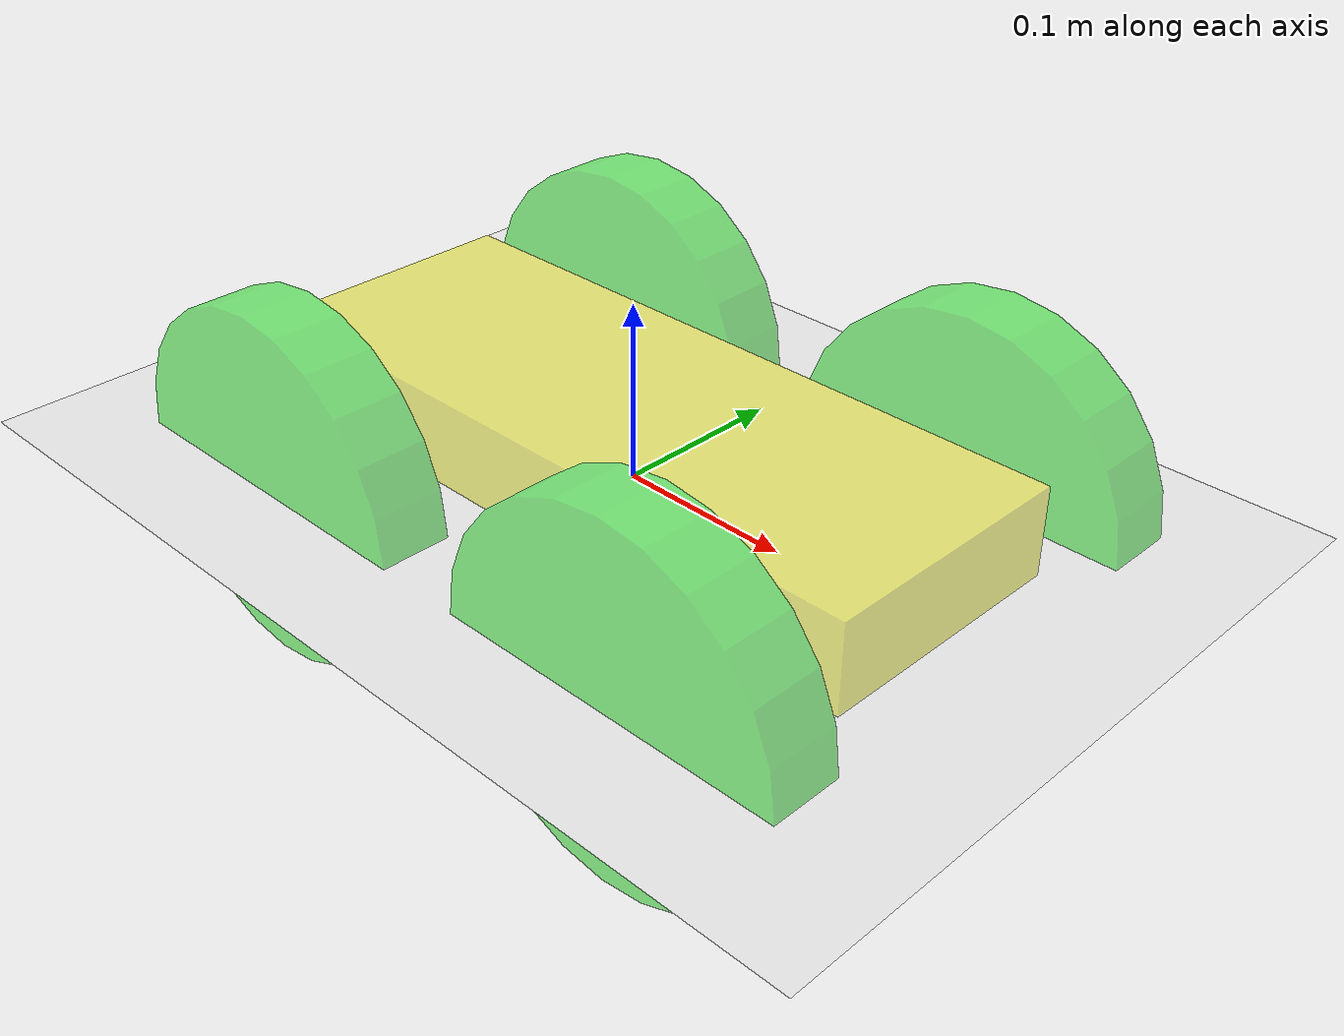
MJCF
<mujoco>
    <worldbody>
        <light diffuse=".5 .5 .5" pos="0 0 3" dir="0 0 -1"/>
        <geom type="plane" size="10 10 0.1" rgba=".9 .9 .9 1" friction="1 0.01 0.001"/>
        <body pos="0 0 0">
            <joint type="free"/>
            <geom type="box" size=".2 .075 .05" rgba=".9 .9 0 .5" friction="0 0 0"/>

            <body pos="0.125 -0.125 0">   <!-- top right corner -->
                <!-- steering joint for this wheel -->
                <geom type="sphere" size="0.001" mass="0.001" rgba="0 0 0 0"/>
                <joint name="steer_tr" type="hinge" axis="0 0 1" range="-0.5 0.5" damping="5.0" frictionloss="0.5" springref="0" stiffness="50"/>
                <body>
                    <!-- wheel joint for spinning -->
                    <joint name="tr" type="hinge" axis="0 1 0" limited="false" damping="0.1" frictionloss="0.1"/>
                    <geom type="cylinder" size=".1 .02" euler="90 0 0" rgba="0 .9 0 .5" mass="0.2" friction="1 0.01 0.2"/>
                </body>
            </body>

            <body pos="0.125 0.125 0">   <!-- top left corner -->
                <!-- steering joint for this wheel -->
                <geom type="sphere" size="0.001" mass="0.001" rgba="0 0 0 0"/>
                <joint name="steer_tl" type="hinge" axis="0 0 1" range="-0.5 0.5" damping="5.0" frictionloss="0.5" springref="0" stiffness="50"/>
                <body>
                    <!-- wheel joint for spinning -->
                    <joint name="tl" type="hinge" axis="0 1 0" limited="false" damping="0.1" frictionloss="0.1"/>
                    <geom type="cylinder" size=".1 .02" euler="90 0 0" rgba="0 .9 0 .5" mass="0.2" friction="1 0.01 0.2"/>
                </body>
            </body>

            <body pos="-0.125 0.125 0">   <!-- bottom left corner -->
                <!-- steering joint for this wheel -->
                <geom type="sphere" size="0.001" mass="0.001" rgba="0 0 0 0"/>
                <joint name="steer_bl" type="hinge" axis="0 0 1" range="-0.5 0.5" damping="5.0" frictionloss="0.5" springref="0" stiffness="50"/>
                <body>
                    <!-- wheel joint for spinning -->
                    <joint name="bl" type="hinge" axis="0 1 0" limited="false" damping="0.1" frictionloss="0.1"/>
                    <geom type="cylinder" size=".1 .02" euler="90 0 0" rgba="0 .9 0 .5" mass="0.2" friction="1 0.01 0.2"/>
                </body>
            </body>

            <body pos="-0.125 -0.125 0">   <!-- bottom right corner -->
                <!-- steering joint for this wheel -->
                <geom type="sphere" size="0.001" mass="0.001" rgba="0 0 0 0"/>
                <joint name="steer_br" type="hinge" axis="0 0 1" range="-0.5 0.5" damping="5.0" frictionloss="0.5" springref="0" stiffness="50"/>
                <body>
                    <!-- wheel joint for spinning -->
                    <joint name="br" type="hinge" axis="0 1 0" limited="false" damping="0.1" frictionloss="0.1"/>
                    <geom type="cylinder" size=".1 .02" euler="90 0 0" rgba="0 .9 0 .5" mass="0.2" friction="1 0.01 0.2"/>
                </body>
            </body>
        </body>
    </worldbody>

    <actuator>
        <motor joint="tl" gear="1"/>
        <motor joint="bl" gear="1"/>
        <motor joint="tr" gear="1"/>
        <motor joint="br" gear="1"/>
        <position joint="steer_tr" kp="50"/>
        <position joint="steer_tl" kp="50"/>
        <position joint="steer_br" kp="50"/>
        <position joint="steer_bl" kp="50"/>
    </actuator>

</mujoco>
